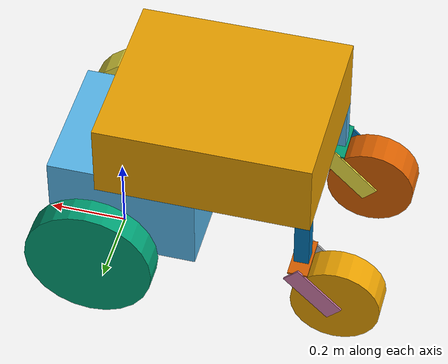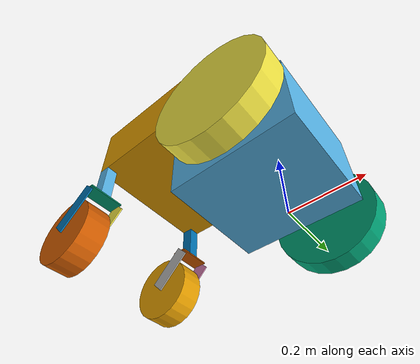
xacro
<?xml version="1.0"?>
<robot
     xmlns:xacro="http://www.ros.org/wiki/xacro" name="mobot">
    <xacro:include filename="$(find mobot_urdf)/urdf/mobot.xacro" />

<link name="imu_link">
</link>

<joint name="imu_joint" type="fixed">
    <parent link="base_link"/>
    <child link="imu_link" />
</joint>

 <!--add IMU plug-in-->

<gazebo>
  <plugin name="imu_plugin" filename="libgazebo_ros_imu.so">
    <alwaysOn>true</alwaysOn>
    <updateRate>100.0</updateRate>
    <bodyName>imu_link</bodyName>
    <topicName>imu_data</topicName>
    <gaussianNoise>1e-06</gaussianNoise>
   </plugin>
</gazebo>

</robot>

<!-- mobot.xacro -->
<robot
     xmlns:xacro="http://www.ros.org/wiki/xacro" name="mobot">
    <xacro:include filename="$(find mobot_urdf)/urdf/mobot_xacro_defs.xacro" />
    <xacro:include filename="$(find mobot_urdf)/urdf/mobot_static_links.xacro" />
    <xacro:include filename="$(find mobot_urdf)/urdf/mobot_wheels.xacro" />
    <xacro:include filename="$(find mobot_urdf)/urdf/casters.xacro" />
    <xacro:include filename="$(find mobot_urdf)/urdf/gazebo_tags.xacro" />
</robot>

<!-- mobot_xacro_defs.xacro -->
<robot
     xmlns:xacro="http://www.ros.org/wiki/xacro" >
     <!-- define the base-link origin to lie at floor level, between the drive wheels-->
     <!--main body is a simple box; origin is a center of box-->
    <xacro:property name="bodylen" value="0.5461" />
    <xacro:property name="bodywidth" value="0.4572" />
    <xacro:property name="bodyheight" value="0.2" />
    <xacro:property name="bodyclearance" value="0.4" />  <!--clearance from bottom of box to ground-->
    <!-- derived values-->
    <xacro:property name="half_bodylen" value="${bodylen/2.0}" />
    <xacro:property name="half_bodyheight" value="${bodyheight/2.0}" />
    <!-- placement of main body relative to base link frame -->
    <xacro:property name="bodyOX" value="${-half_bodylen}" />
    <xacro:property name="bodyOY" value="0" />
    <xacro:property name="bodyOZ" value="0.45" />

    <!-- define the drive-wheel dimensions-->
    <xacro:property name="tirediam" value="0.3302" />
    <xacro:property name="tirerad" value="${tirediam/2.0}" />
    <xacro:property name="tirewidth" value="0.06985" />
    <!-- "track" is the distance between the drive wheels -->
    <xacro:property name="track" value=".56515" />

    <!-- battery box dimensions -->
    <xacro:property name="batterylen" value="0.381" />
    <xacro:property name="batterywidth" value="0.3556" />
    <xacro:property name="batteryheight" value="0.254" />
    <!-- placement of battery box relative to base frame -->
    <xacro:property name="batOX" value="-0.05" />
    <xacro:property name="batOY" value="0" />
    <xacro:property name="batOZ" value="0.22" />

    <xacro:property name="M_PI" value="3.1415926535897931" />
    <xacro:property name="boschwidth" value="0.0381" />
    <xacro:property name="casterdrop" value="0.125" />
    <xacro:property name="bracketwidth" value="0.1175" />
    <xacro:property name="bracketheight" value="0.16" />
    <xacro:property name="bracketthick" value="0.0508" />
    <xacro:property name="bracketangle" value="0.7854" />
    <xacro:property name="casterwidth" value="0.0826" />
    <xacro:property name="casterdiam" value="0.2286" />

    <!--here is a default inertia matrix with small, but legal values; use this when don't need accuracy for I -->
    <!--model will assign inertia matrix dominated by main body box -->
    <xacro:macro name="default_inertial" params="mass">
        <inertial>
            <mass value="${mass}" />
            <inertia ixx="0.01" ixy="0.0" ixz="0.0"
         iyy="0.01" iyz="0.0"
         izz="0.01" />
        </inertial>
    </xacro:macro>
</robot>

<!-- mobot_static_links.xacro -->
<robot
     xmlns:xacro="http://www.ros.org/wiki/xacro" name="static_links">
    <link name="base_link">
        <visual>
            <geometry>
                <box size="${bodylen} ${bodywidth} ${bodyheight}"/>
            </geometry>
            <origin xyz="${bodyOX} ${bodyOY} ${bodyOZ}" rpy="0 0 0"/>
        </visual>
        <collision>
            <geometry>
                <box size="${bodylen} ${bodywidth} ${bodyheight}"/>
            </geometry>
            <origin xyz="${bodyOX} ${bodyOY} ${bodyOZ}" rpy="0 0 0"/>
        </collision>
        <inertial>
            <!--assign almost all the mass to the main body box; set m= 100kg; treat I as approx m*r^2 -->
            <mass value="100" />
            <inertia ixx="10" ixy="0" ixz="0"
              iyy="10" iyz="0"
              izz="10" />
        </inertial>
    </link>

    <link name="batterybox">
        <visual>
            <geometry>
                <box size="${batterylen} ${batterywidth} ${batteryheight}"/>
            </geometry>
            <origin xyz="0 0 0" rpy="0 0 0"/>
        </visual>
        <collision>
            <geometry>
                <box size="${batterylen} ${batterywidth} ${batteryheight}"/>
            </geometry>
            <origin xyz="0 0 0" rpy="0 0 0"/>
        </collision>
        <xacro:default_inertial mass="1"/>
    </link>
    <joint name="batterytobase" type="fixed">
        <parent link="base_link"/>
        <child link="batterybox"/>
        <origin xyz="${batOX} ${batOY} ${batOZ}" rpy="0 0 0"/>
    </joint>

</robot>

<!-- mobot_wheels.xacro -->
<robot
     xmlns:xacro="http://www.ros.org/wiki/xacro" name="wheels">

    <xacro:macro name="wheel" params="prefix reflect">
        <link name="${prefix}_wheel">
            <visual>
                <geometry>
                    <cylinder radius="${tirerad}" length="${tirewidth}"/>
                </geometry>
            </visual>
            <collision>
                <geometry>
                    <cylinder radius="${tirerad}" length="${tirewidth}"/>
                </geometry>
            </collision>
            <inertial>
            <!--assign inertial properties to drive wheels -->
            <mass value="1" />
            <inertia ixx="0.1" ixy="0" ixz="0"
              iyy="0.1" iyz="0"
              izz="0.1" />
        </inertial>
        </link>
        <joint name="${prefix}_wheel_joint" type="continuous">
            <axis xyz="0 0 1"/>
            <parent link="base_link"/>
            <child link="${prefix}_wheel"/>
            <origin xyz="0 ${reflect*track/2} ${tirerad}" rpy="0 ${M_PI/2} ${M_PI/2}"/>
            <limit effort="100" velocity="15" />
            <joint_properties damping="0.0" friction="0.0" />
        </joint>
    </xacro:macro>
    <xacro:wheel prefix="left" reflect="1"/>
    <xacro:wheel prefix="right" reflect="-1"/>
</robot>

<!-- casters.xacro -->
<robot
     xmlns:xacro="http://www.ros.org/wiki/xacro" name="casters">

    <xacro:macro name="caster" params="prefix reflect">
        <link name="castdrop_${prefix}">
            <visual>
                <geometry>
                    <box size="${boschwidth} ${boschwidth} ${casterdrop}"/>
                </geometry>
                <origin xyz="0 0 0" rpy="0 0 0"/>
            </visual>
            <collision>
                <geometry>
                    <box size="${boschwidth} ${boschwidth} ${casterdrop}"/>
                </geometry>
                <origin xyz="0 0 0" rpy="0 0 0"/>
            </collision>
            <xacro:default_inertial mass="0.2"/>
        </link>
        <joint name="cast2base_${prefix}" type="fixed">
            <parent link="base_link"/>
            <child link="castdrop_${prefix}"/>
            <origin xyz="${-bodylen/2+bodyOX+boschwidth/2} ${reflect*bodywidth/2-reflect*boschwidth/2} ${-casterdrop/2-bodyheight/2+bodyOZ}" />
        </joint>
        <link name="brackettop_${prefix}">
            <visual>
                <geometry>
                    <box size="${bracketwidth} ${bracketthick} .005"/>
                </geometry>
                <origin xyz="0 0 0" rpy="0 0 0"/>
            </visual>
            <collision>
                <geometry>
                    <box size="${bracketwidth} ${bracketthick} .005"/>
                </geometry>
                <origin xyz="0 0 0" rpy="0 0 0"/>
            </collision>
            <xacro:default_inertial mass="0.2"/>
        </link>
        <joint name="cast2bracket_${prefix}" type="continuous">
            <axis xyz="0 0 1"/>
            <parent link="castdrop_${prefix}"/>
            <child link="brackettop_${prefix}"/>
            <origin xyz="0 0 ${-casterdrop/2}" rpy="0 0 ${M_PI/2}"/>
            <joint_properties damping="0.0" friction="0.0" />
        </joint>
        <link name="bracketside1_${prefix}">
            <visual>
                <geometry>
                    <box size="${bracketthick} ${bracketheight} .005"/>
                </geometry>
                <origin xyz="0 0 0" rpy="${M_PI/2} ${-bracketangle} ${M_PI/2}"/>
            </visual>
            <collision>
                <geometry>
                    <box size="${bracketthick} ${bracketheight} .005"/>
                </geometry>
                <origin xyz="0 0 0" rpy="${M_PI/2} ${-bracketangle} ${M_PI/2}"/>
            </collision>
            <xacro:default_inertial mass="0.2"/>
        </link>
        <joint name="brack2top1_${prefix}" type="fixed">
            <parent link="brackettop_${prefix}"/>
            <child link="bracketside1_${prefix}"/>
            <origin xyz="${bracketwidth/2} .04 -${bracketheight/2-.02}" rpy="0 0 0" />
        </joint>
        <link name="bracketside2_${prefix}">
            <visual>
                <geometry>
                    <box size="${bracketthick} ${bracketheight} .005"/>
                </geometry>
                <origin xyz="0 0 0" rpy="${M_PI/2} ${-bracketangle} ${M_PI/2}"/>
            </visual>
            <collision>
                <geometry>
                    <box size="${bracketthick} ${bracketheight} .005"/>
                </geometry>
                <origin xyz="0 0 0" rpy="${M_PI/2} ${-bracketangle} ${M_PI/2}"/>
            </collision>
            <xacro:default_inertial mass="0.2"/>
        </link>
        <joint name="brack2top2_${prefix}" type="fixed">
            <parent link="brackettop_${prefix}"/>
            <child link="bracketside2_${prefix}"/>
            <origin xyz="${-bracketwidth/2} .04 -${bracketheight/2-.02}" rpy="0 0 0" />
        </joint>
        <link name="${prefix}_casterwheel">
            <visual>
                <geometry>
                    <cylinder radius="${casterdiam/2}" length="${casterwidth}"/>
                </geometry>
            </visual>
            <collision>
                <geometry>
                    <cylinder radius="${casterdiam/2}" length="${casterwidth}"/>
                </geometry>
            </collision>
            <!-- accept default inertial properties for caster wheels-->
            <xacro:default_inertial mass="0.5"/>
        </link>
        <joint name="${prefix}_caster_joint" type="continuous">
            <axis xyz="0 0 1"/>
            <parent link="bracketside1_${prefix}"/>
            <child link="${prefix}_casterwheel"/>
            <origin xyz="${-casterwidth/2-.02} .053 -.053" rpy="0 ${M_PI/2} 0"/>
            <limit effort="100" velocity="15" />
            <joint_properties damping="0.0" friction="0.0" />
        </joint>
    </xacro:macro>
    <xacro:caster prefix="left" reflect="1"/>
    <xacro:caster prefix="right" reflect="-1"/>
</robot>
